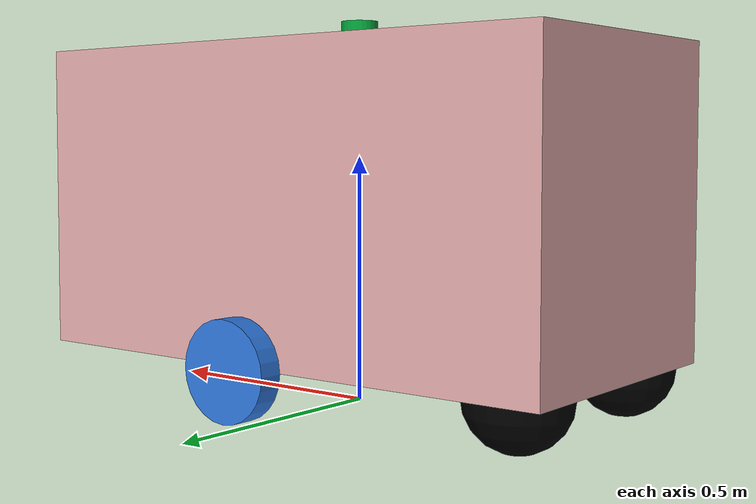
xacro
<?xml version="1.0"?>
<robot xmlns:xacro="http://www.ros.org/wiki/xacro" name="Servera">

    <!-- reference taken from: https://github.com/linorobot/linorobot2/tree/jazzy -->

    <xacro:include filename="$(find servera_description)/hw_urdf/servera_properties.xacro"/>  <!-- All the dimensions | Integral urdf -->
    <xacro:include filename="$(find servera_description)/hw_urdf/solid_bodies.xacro"/>  <!-- All the definitions of the primitive bodies| Integral urdf -->
    <xacro:include filename="$(find servera_description)/hw_urdf/material.xacro"/>  <!-- All the meterial list | consemtics -->
    <xacro:include filename="$(find servera_description)/hw_urdf/mock-hardware_ros2_control.xacro"/>  <!-- hw_interface for ros2_control -->
    <xacro:include filename="$(find servera_description)/hw_urdf/hw_lidar.xacro"/>  <!-- lidar definition -->

    <xacro:base
        length="${base_length}"
        width="${base_width}"
        height="${base_height}"
        mass="${base_mass}"
        wheel_radius="${wheel_radius}"
        wheel_pos_z="${wheel_pos_z}"
        mesh_file=""
    />

    <xacro:wheel
        side="left"
        radius="${wheel_radius}"
        width="${wheel_width}"
        pos_x="${wheel_pos_x}"
        pos_y="${wheel_pos_y}"
        pos_z="${wheel_pos_z}"
        mass="${wheel_mass}"
        mesh_file=""
    />

    <xacro:wheel
        side="right"
        radius="${wheel_radius}"
        width="${wheel_width}"
        pos_x="${wheel_pos_x}"
        pos_y="${-wheel_pos_y}"
        pos_z="${wheel_pos_z}"
        mass="${wheel_mass}"
        mesh_file=""
    />

    <xacro:lidar
        frame_id="lidar_link" >
        <origin xyz="0.0 0.0 ${base_height-wheel_radius}" rpy="0 0 3.14"/>
    </xacro:lidar>

    <xacro:caster_wheel
      side="right"
      mass="0.01"
      base_length="${base_length}"
      base_width="${base_width}"
      wheel_radius="${wheel_radius}"
      wheel_pos_z="${wheel_pos_z}"
    />

    <xacro:caster_wheel
      side="left"
      mass="0.01"
      base_length="${base_length}"
      base_width="${base_width}"
      wheel_radius="${wheel_radius}"
      wheel_pos_z="${wheel_pos_z}"
    />
</robot>

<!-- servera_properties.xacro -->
<robot xmlns:xacro="http://ros.org/wiki/xacro">

  <xacro:property name="base_length" value="1.2" />
  <xacro:property name="base_width" value="0.590" />
  <xacro:property name="base_height" value="0.625" />
  <xacro:property name="base_mass" value="50" />

  <xacro:property name="wheel_radius" value="0.1" />
  <xacro:property name="wheel_width" value="0.05" />

  <xacro:property name="wheel_pos_x" value="0.05" />
  <xacro:property name="wheel_pos_y" value="0.325" />
  <xacro:property name="wheel_pos_z" value="-0.1" />

  <xacro:property name="wheel_mass" value=".3" />
  <xacro:property name="wheel_torque" value="20" />

  <xacro:property name="front_caster_wheel" value="true" />
  <xacro:property name="rear_caster_wheel" value="true" />

</robot>

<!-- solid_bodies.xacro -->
<robot xmlns:xacro="http://ros.org/wiki/xacro">

  <xacro:macro name="base" params="length width height mass wheel_radius wheel_pos_z mesh_file">

    <link name="base_footprint"/>

    <link name="base_link">
      <visual>
        <origin xyz="0 0 ${height/2 - wheel_radius}" rpy="0 0 0"/>
        <geometry>
          <xacro:if value="${mesh_file == ''}">
            <box size="${length} ${width} ${height}"/>
          </xacro:if>
          <xacro:unless value="${mesh_file == ''}">
            <mesh filename="${mesh_file}" scale="1 1 1"/>
          </xacro:unless>
        </geometry>
        <material name="yellow">
          <color rgba="0.8784 0.6627 0.6627 1.0"/>
        </material>
      </visual>

      <collision>
        <origin xyz="0 0 ${height/2 - wheel_radius}" rpy="0 0 0"/>
        <geometry>
          <box size="${length} ${width} ${height}"/>
        </geometry>
      </collision>

      <inertial>
        <origin xyz="0 0 ${height/2 - wheel_radius}" rpy="0 0 0"/>
        <mass value="${mass}"/>
        <inertia ixx="${(1/12) * mass * ((width  * width)  + (height * height))}" ixy="0.0" ixz="0.0"
                 iyy="${(1/12) * mass * ((length * length) + (height * height))}" iyz="0.0"
                 izz="${(1/12) * mass * ((length * length) + (width  * width))}"/>
      </inertial>
    </link>

    <gazebo reference="base_link">
      <visual>
        <material>
          <ambient>0.8392 0.6314 0.0 1.0</ambient>
          <diffuse>0.8392 0.6314 0.0 1.0</diffuse>
          <specular>0.99 0.99 0.99 1.0</specular>
          <emissive>0.0 0.0 0.0 0.0</emissive>
        </material>
      </visual>
    </gazebo>

    <joint name="base_to_footprint" type="fixed">
      <parent link="base_footprint"/>
      <child link="base_link"/>
      <origin xyz="0 0 ${wheel_radius - wheel_pos_z}" rpy="0 0 0"/>
    </joint>
  </xacro:macro>

<!-- ====================================================== Wheels ============================================ -->

  <xacro:macro name="wheel" params="side radius width pos_x pos_y pos_z mass mesh_file">
    <link name="${side}_wheel_link">
      <visual>
        <origin xyz="0 0 0" rpy="${pi/2} 0 0"/>
        <geometry>
          <xacro:if value="${mesh_file == ''}">
            <cylinder radius="${radius}" length="${width}"/>
          </xacro:if>
          <xacro:unless value="${mesh_file == ''}">
            <mesh filename="${mesh_file}" scale="1 1 1"/>
          </xacro:unless>
        </geometry>
        <material name="blue">
            <color rgba="0.1764 0.4588 0.8509 1.0"/>
        </material>
      </visual>
      <collision>
        <origin xyz="0 0 0" rpy="${pi/2} 0 0"/>
        <geometry>
          <cylinder radius="${radius}" length="${width}"/>
        </geometry>
      </collision>

      <inertial>
        <origin xyz="0 0 0" rpy="0 0 0"/>
        <mass value="${mass}"/>
        <inertia ixx="${(2/5) * mass * (radius * radius)}" ixy="0" ixz="0"
                 iyy="${(2/5) * mass * (radius * radius)}" iyz="0"
                 izz="${(2/5) * mass * (radius * radius)}" />
      </inertial>
    </link>
    <gazebo reference="${side}_wheel_link">
      <mu1>1.0</mu1>
      <mu2>1.0</mu2>
      <kp>10000000.0</kp>
      <kd>1.0</kd>
      <visual>
        <material>
          <ambient>0.1764 0.4588 0.8509 1.0</ambient>
          <diffuse>0.1764 0.4588 0.8509 1.0</diffuse>
          <specular>0.1764 0.4588 0.8509 1.0</specular>
          <emissive>0.0 0.0 0.0 0.0</emissive>
        </material>
      </visual>
    </gazebo>
    <joint name="${side}_wheel_joint" type="continuous">
      <axis xyz="0 1 0" />
      <parent link="base_link"/>
      <child link="${side}_wheel_link"/>
      <origin xyz="${pos_x} ${pos_y} ${pos_z}" rpy="0 0 0"/>
    </joint>
  </xacro:macro>

<!-- ======================================================  Castor Wheels ============================================ -->

  <xacro:macro name="caster_wheel" params="side mass base_length base_width wheel_radius wheel_pos_z">
    <xacro:property name="caster_wheel_radius" value="${(wheel_radius - wheel_pos_z) / 2}" />

    <!-- ADD "base_length" IN THE 'params' LIST, IF YOU WANT TO UNCOMMENT THE FOLLOWING
    (N.B: this snippet is taken from linorobot2, and is not reuired in servera) -->

    <xacro:if value="${side == 'right'}">
        <xacro:property name="caster_wheel_x" value="-${(base_length / 2) - caster_wheel_radius}" />
        <xacro:property name="caster_wheel_y" value="-${(base_width / 2) - caster_wheel_radius}" />
      </xacro:if>

    <xacro:if value="${side == 'left'}">
        <xacro:property name="caster_wheel_x" value="-${(base_length / 2) - caster_wheel_radius}" />
        <xacro:property name="caster_wheel_y" value="${(base_width / 2) - caster_wheel_radius}" />
    </xacro:if>

    <link name="${side}_caster_wheel_link">
      <visual>
        <origin xyz="0 0 0" rpy="0 0 0"/>
        <geometry>
          <sphere radius="${caster_wheel_radius}" />
        </geometry>
        <material name="black">
            <color rgba="0.0 0.0 0.0 1.0"/>
        </material>
      </visual>

      <collision>
        <origin xyz="0 0 0" rpy="0 0 0"/>
        <geometry>
          <sphere radius="${caster_wheel_radius}" />
        </geometry>
      </collision>

      <inertial>
        <origin xyz="0 0 0" rpy="0 0 0"/>
        <mass value="${mass}"/>
        <inertia ixx="${(2/5) * mass * (caster_wheel_radius * caster_wheel_radius)}" ixy="0" ixz="0"
                 iyy="${(2/5) * mass * (caster_wheel_radius * caster_wheel_radius)}" iyz="0"
                 izz="${(2/5) * mass * (caster_wheel_radius * caster_wheel_radius)}" />
      </inertial>
    </link>

    <gazebo reference="${side}_caster_wheel_link">
        <mu1>0.01</mu1>
        <mu2>0.01</mu2>
    </gazebo>

    <joint name="${side}_caster_wheel_joint" type="fixed">
      <parent link="base_link"/>
      <child link="${side}_caster_wheel_link"/>
      <origin xyz=" ${caster_wheel_x} ${caster_wheel_y} -${caster_wheel_radius}" rpy="0 0 0"/>
    </joint>
  </xacro:macro>

</robot>

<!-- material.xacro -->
<robot xmlns:xacro="http://www.ros.org/wiki/xacro">

  <!-- Basic Primary Colors -->
  <material name="red">
    <color rgba="1.0 0.0 0.0 1.0"/>
  </material>

  <material name="green">
    <color rgba="0.0 1.0 0.0 1.0"/>
  </material>

  <material name="blue">
    <color rgba="0.0 0.0 1.0 1.0"/>
  </material>

  <material name="white">
    <color rgba="1.0 1.0 1.0 1.0"/>
  </material>

  <material name="black">
    <color rgba="0.0 0.0 0.0 1.0"/>
  </material>

  <material name="grey">
    <color rgba="0.5 0.5 0.5 1.0"/>
  </material>

  <material name="light_grey">
    <color rgba="0.7 0.7 0.7 1.0"/>
  </material>

  <material name="dark_grey">
    <color rgba="0.3 0.3 0.3 1.0"/>
  </material>

  <!-- Secondary Colors -->
  <material name="yellow">
    <color rgba="1.0 1.0 0.0 1.0"/>
  </material>

  <material name="cyan">
    <color rgba="0.0 1.0 1.0 1.0"/>
  </material>

  <material name="magenta">
    <color rgba="1.0 0.0 1.0 1.0"/>
  </material>

  <material name="orange">
    <color rgba="1.0 0.647 0.0 1.0"/>
  </material>

  <material name="purple">
    <color rgba="0.5 0.0 0.5 1.0"/>
  </material>

  <material name="pink">
    <color rgba="1.0 0.753 0.796 1.0"/>
  </material>

  <material name="brown">
    <color rgba="0.647 0.165 0.165 1.0"/>
  </material>

  <!-- Darker Variants -->
  <material name="dark_red">
    <color rgba="0.5 0.0 0.0 1.0"/>
  </material>

  <material name="dark_green">
    <color rgba="0.0 0.5 0.0 1.0"/>
  </material>

  <material name="dark_blue">
    <color rgba="0.0 0.0 0.5 1.0"/>
  </material>

  <!-- Lighter Variants -->
  <material name="light_red">
    <color rgba="1.0 0.5 0.5 1.0"/>
  </material>

  <material name="light_green">
    <color rgba="0.5 1.0 0.5 1.0"/>
  </material>

  <material name="light_blue">
    <color rgba="0.5 0.5 1.0 1.0"/>
  </material>

  <!-- Metallic Materials -->
  <material name="silver">
    <color rgba="0.75 0.75 0.75 1.0"/>
  </material>

  <material name="gold">
    <color rgba="1.0 0.843 0.0 1.0"/>
  </material>

</robot>

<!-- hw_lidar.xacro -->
<robot xmlns:xacro="http://ros.org/wiki/xacro">

  <xacro:macro name="lidar" params="*origin frame_id ">

    <link name="${frame_id}">
      <visual>
        <origin xyz="0 0 0.025" rpy="0 0 0"/>
        <geometry>
          <cylinder radius="0.0375" length="0.05"/>
        </geometry>
        <material name="green">
          <color rgba="0.003 0.639 0.223 1.0"/>
        </material>
      </visual>

    </link>

    <joint name="${frame_id}_to_base_link" type="fixed">
      <parent link="base_link"/>
      <child link="${frame_id}"/>
      <xacro:insert_block name="origin" />
    </joint>

  </xacro:macro>
</robot>
